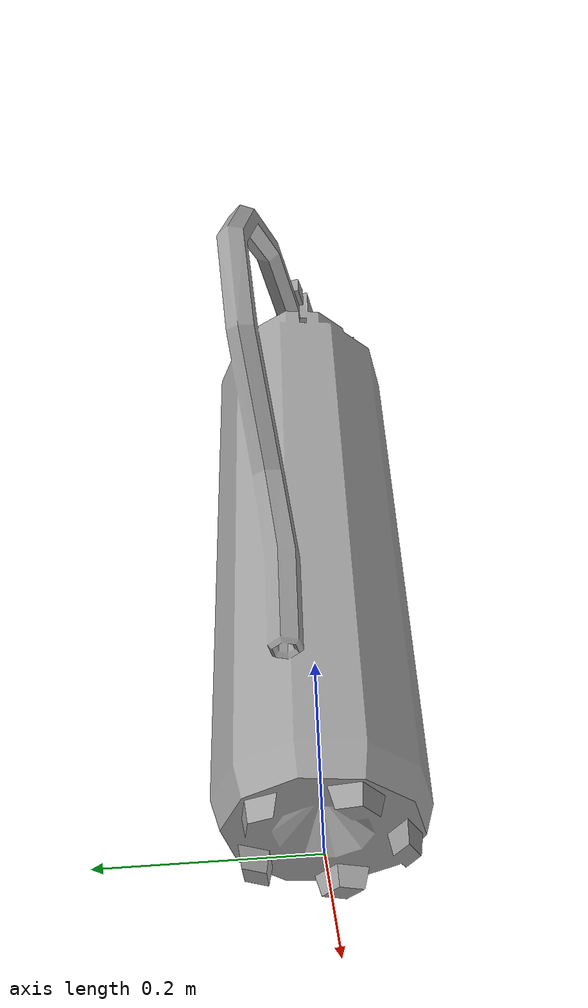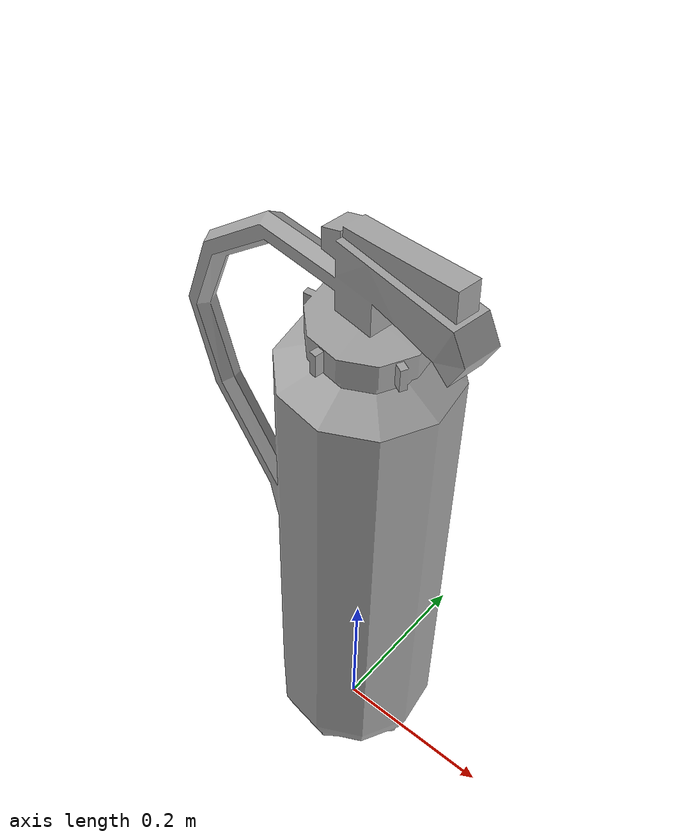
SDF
<?xml version="1.0" ?>
<sdf version="1.5">
  <model name="FireExtinguisher">
    <static>true</static>
    <link name="link">
      <collision name="collision">
        <geometry>
          <mesh>
            <scale>0.6 0.6 0.6</scale>
            <uri>model://fire_extinguisher/meshes/model.dae</uri>
          </mesh>
        </geometry>
      </collision>
      <visual name="visual">
        <geometry>
          <mesh>
            <scale>0.6 0.6 0.6</scale>
            <uri>model://fire_extinguisher/meshes/model.dae</uri>
          </mesh>
        </geometry>
        <material>
          <script>
            <uri>model://fire_extinguisher/materials/scripts</uri>
            <uri>model://fire_extinguisher/materials/textures</uri>
            <name>fireextinguisherMat/Diffuse</name>
          </script>
        </material>
      </visual>
    </link>
  </model>
</sdf>
